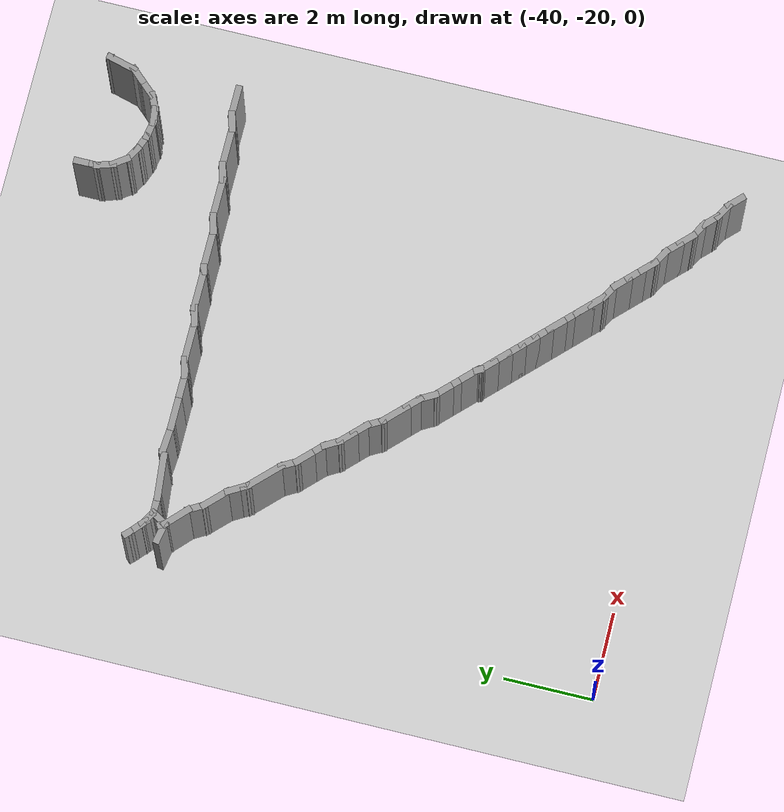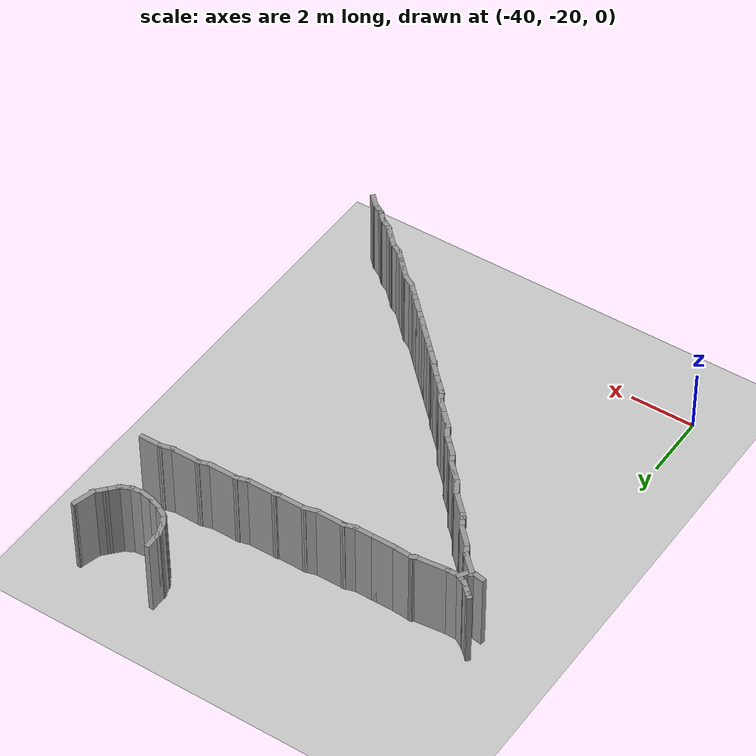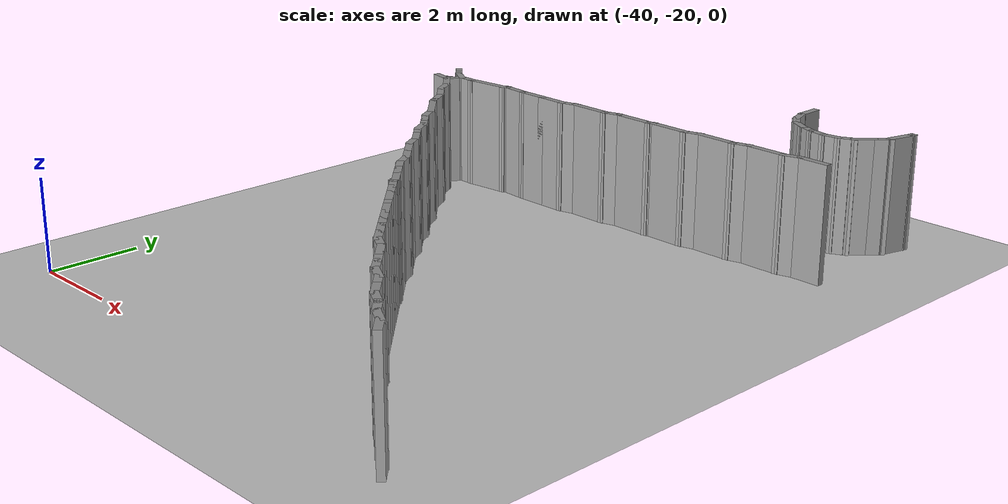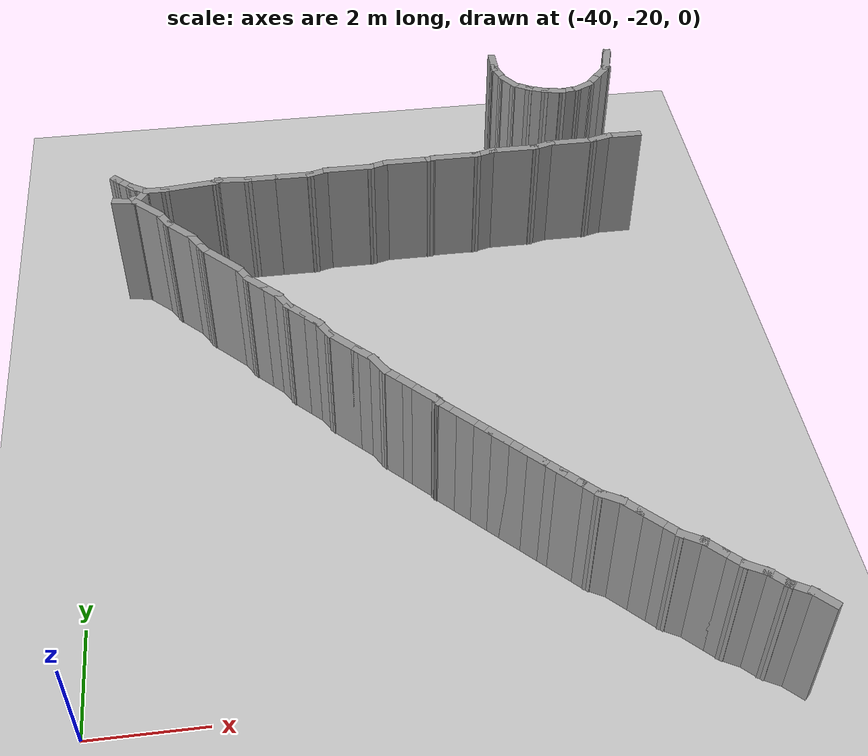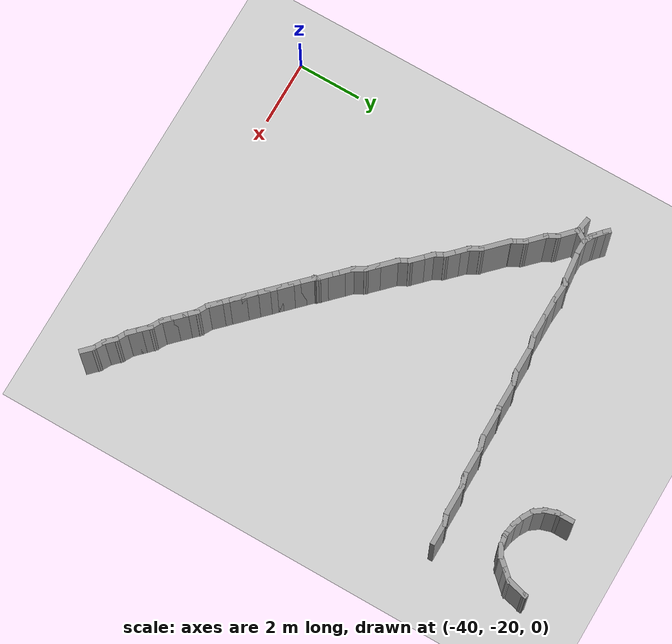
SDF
<sdf version="1.6">
 <world name="default">
  <model name="ground_plane">
   <static>1</static>
   <link name="link">
    <collision name="collision">
     <geometry><plane><normal>0 0 1</normal><size>100 100</size></plane></geometry>
     <surface><friction><ode><mu>100</mu><mu2>50</mu2></ode></friction></surface>
    </collision>
    <visual name="visual">
     <cast_shadows>0</cast_shadows>
     <geometry><plane><normal>0 0 1</normal><size>100 100</size></plane></geometry>
     <material>
      <script><uri>file://media/materials/scripts/gazebo.material</uri><name>Gazebo/Grey</name></script>
     </material>
    </visual>
   </link>
  </model>
  <model name="scene">
   <pose>1.8013 -1.70593 0 0 -0 0</pose>
   <link name="Wall_100">
    <collision name="Wall_100_Collision">
     <geometry><box><size>0.5 0.15 2.5</size></box></geometry>
     <pose>0 0 1.25 0 -0 0</pose>
    </collision>
    <visual name="Wall_100_Visual">
     <pose>0 0 1.25 0 -0 0</pose>
     <geometry><box><size>0.5 0.15 2.5</size></box></geometry>
     <material>
      <script><uri>file://media/materials/scripts/gazebo.material</uri><name>Gazebo/Grey</name></script>
      <ambient>1 1 1 1</ambient>
     </material>
    </visual>
    <pose>-30.6917 -18.8012 0 0 -0 2.35619</pose>
   </link>
   <link name="Wall_101">
    <collision name="Wall_101_Collision">
     <geometry><box><size>0.5 0.15 2.5</size></box></geometry>
     <pose>0 0 1.25 0 -0 0</pose>
    </collision>
    <visual name="Wall_101_Visual">
     <pose>0 0 1.25 0 -0 0</pose>
     <geometry><box><size>0.5 0.15 2.5</size></box></geometry>
     <material>
      <script><uri>file://media/materials/scripts/gazebo.material</uri><name>Gazebo/Grey</name></script>
      <ambient>1 1 1 1</ambient>
     </material>
    </visual>
    <pose>-30.967 -18.5899 0 0 -0 2.61799</pose>
   </link>
   <link name="Wall_103">
    <collision name="Wall_103_Collision">
     <geometry><box><size>0.5 0.15 2.5</size></box></geometry>
     <pose>0 0 1.25 0 -0 0</pose>
    </collision>
    <visual name="Wall_103_Visual">
     <pose>0 0 1.25 0 -0 0</pose>
     <geometry><box><size>0.5 0.15 2.5</size></box></geometry>
     <material>
      <script><uri>file://media/materials/scripts/gazebo.material</uri><name>Gazebo/Grey</name></script>
      <ambient>1 1 1 1</ambient>
     </material>
    </visual>
    <pose>-31.2423 -18.3787 0 0 -0 2.35619</pose>
   </link>
   <link name="Wall_104">
    <collision name="Wall_104_Collision">
     <geometry><box><size>0.5 0.15 2.5</size></box></geometry>
     <pose>0 0 1.25 0 -0 0</pose>
    </collision>
    <visual name="Wall_104_Visual">
     <pose>0 0 1.25 0 -0 0</pose>
     <geometry><box><size>0.5 0.15 2.5</size></box></geometry>
     <material>
      <script><uri>file://media/materials/scripts/gazebo.material</uri><name>Gazebo/Grey</name></script>
      <ambient>1 1 1 1</ambient>
     </material>
    </visual>
    <pose>-31.5176 -18.1674 0 0 -0 2.61799</pose>
   </link>
   <link name="Wall_105">
    <collision name="Wall_105_Collision">
     <geometry><box><size>0.5 0.15 2.5</size></box></geometry>
     <pose>0 0 1.25 0 -0 0</pose>
    </collision>
    <visual name="Wall_105_Visual">
     <pose>0 0 1.25 0 -0 0</pose>
     <geometry><box><size>0.5 0.15 2.5</size></box></geometry>
     <material>
      <script><uri>file://media/materials/scripts/gazebo.material</uri><name>Gazebo/Grey</name></script>
      <ambient>1 1 1 1</ambient>
     </material>
    </visual>
    <pose>-31.7929 -17.9562 0 0 -0 2.35619</pose>
   </link>
   <link name="Wall_106">
    <collision name="Wall_106_Collision">
     <geometry><box><size>0.5 0.15 2.5</size></box></geometry>
     <pose>0 0 1.25 0 -0 0</pose>
    </collision>
    <visual name="Wall_106_Visual">
     <pose>0 0 1.25 0 -0 0</pose>
     <geometry><box><size>0.5 0.15 2.5</size></box></geometry>
     <material>
      <script><uri>file://media/materials/scripts/gazebo.material</uri><name>Gazebo/Grey</name></script>
      <ambient>1 1 1 1</ambient>
     </material>
    </visual>
    <pose>-32.0404 -17.7087 0 0 -0 2.35619</pose>
   </link>
   <link name="Wall_107">
    <collision name="Wall_107_Collision">
     <geometry><box><size>0.5 0.15 2.5</size></box></geometry>
     <pose>0 0 1.25 0 -0 0</pose>
    </collision>
    <visual name="Wall_107_Visual">
     <pose>0 0 1.25 0 -0 0</pose>
     <geometry><box><size>0.5 0.15 2.5</size></box></geometry>
     <material>
      <script><uri>file://media/materials/scripts/gazebo.material</uri><name>Gazebo/Grey</name></script>
      <ambient>1 1 1 1</ambient>
     </material>
    </visual>
    <pose>-32.3157 -17.4975 0 0 -0 2.61799</pose>
   </link>
   <link name="Wall_108">
    <collision name="Wall_108_Collision">
     <geometry><box><size>0.5 0.15 2.5</size></box></geometry>
     <pose>0 0 1.25 0 -0 0</pose>
    </collision>
    <visual name="Wall_108_Visual">
     <pose>0 0 1.25 0 -0 0</pose>
     <geometry><box><size>0.5 0.15 2.5</size></box></geometry>
     <material>
      <script><uri>file://media/materials/scripts/gazebo.material</uri><name>Gazebo/Grey</name></script>
      <ambient>1 1 1 1</ambient>
     </material>
    </visual>
    <pose>-32.591 -17.2862 0 0 -0 2.35619</pose>
   </link>
   <link name="Wall_109">
    <collision name="Wall_109_Collision">
     <geometry><box><size>0.5 0.15 2.5</size></box></geometry>
     <pose>0 0 1.25 0 -0 0</pose>
    </collision>
    <visual name="Wall_109_Visual">
     <pose>0 0 1.25 0 -0 0</pose>
     <geometry><box><size>0.5 0.15 2.5</size></box></geometry>
     <material>
      <script><uri>file://media/materials/scripts/gazebo.material</uri><name>Gazebo/Grey</name></script>
      <ambient>1 1 1 1</ambient>
     </material>
    </visual>
    <pose>-32.8385 -17.0387 0 0 -0 2.35619</pose>
   </link>
   <link name="Wall_110">
    <collision name="Wall_110_Collision">
     <geometry><box><size>0.5 0.15 2.5</size></box></geometry>
     <pose>0 0 1.25 0 -0 0</pose>
    </collision>
    <visual name="Wall_110_Visual">
     <pose>0 0 1.25 0 -0 0</pose>
     <geometry><box><size>0.5 0.15 2.5</size></box></geometry>
     <material>
      <script><uri>file://media/materials/scripts/gazebo.material</uri><name>Gazebo/Grey</name></script>
      <ambient>1 1 1 1</ambient>
     </material>
    </visual>
    <pose>-33.086 -16.7913 0 0 -0 2.35619</pose>
   </link>
   <link name="Wall_111">
    <collision name="Wall_111_Collision">
     <geometry><box><size>0.5 0.15 2.5</size></box></geometry>
     <pose>0 0 1.25 0 -0 0</pose>
    </collision>
    <visual name="Wall_111_Visual">
     <pose>0 0 1.25 0 -0 0</pose>
     <geometry><box><size>0.5 0.15 2.5</size></box></geometry>
     <material>
      <script><uri>file://media/materials/scripts/gazebo.material</uri><name>Gazebo/Grey</name></script>
      <ambient>1 1 1 1</ambient>
     </material>
    </visual>
    <pose>-33.3613 -16.58 0 0 -0 2.61799</pose>
   </link>
   <link name="Wall_112">
    <collision name="Wall_112_Collision">
     <geometry><box><size>0.5 0.15 2.5</size></box></geometry>
     <pose>0 0 1.25 0 -0 0</pose>
    </collision>
    <visual name="Wall_112_Visual">
     <pose>0 0 1.25 0 -0 0</pose>
     <geometry><box><size>0.5 0.15 2.5</size></box></geometry>
     <material>
      <script><uri>file://media/materials/scripts/gazebo.material</uri><name>Gazebo/Grey</name></script>
      <ambient>1 1 1 1</ambient>
     </material>
    </visual>
    <pose>-33.6366 -16.3688 0 0 -0 2.35619</pose>
   </link>
   <link name="Wall_113">
    <collision name="Wall_113_Collision">
     <geometry><box><size>0.5 0.15 2.5</size></box></geometry>
     <pose>0 0 1.25 0 -0 0</pose>
    </collision>
    <visual name="Wall_113_Visual">
     <pose>0 0 1.25 0 -0 0</pose>
     <geometry><box><size>0.5 0.15 2.5</size></box></geometry>
     <material>
      <script><uri>file://media/materials/scripts/gazebo.material</uri><name>Gazebo/Grey</name></script>
      <ambient>1 1 1 1</ambient>
     </material>
    </visual>
    <pose>-33.8841 -16.1213 0 0 -0 2.35619</pose>
   </link>
   <link name="Wall_115">
    <collision name="Wall_115_Collision">
     <geometry><box><size>0.5 0.15 2.5</size></box></geometry>
     <pose>0 0 1.25 0 -0 0</pose>
    </collision>
    <visual name="Wall_115_Visual">
     <pose>0 0 1.25 0 -0 0</pose>
     <geometry><box><size>0.5 0.15 2.5</size></box></geometry>
     <material>
      <script><uri>file://media/materials/scripts/gazebo.material</uri><name>Gazebo/Grey</name></script>
      <ambient>1 1 1 1</ambient>
     </material>
    </visual>
    <pose>-34.1315 -15.8738 0 0 -0 2.35619</pose>
   </link>
   <link name="Wall_116">
    <collision name="Wall_116_Collision">
     <geometry><box><size>0.5 0.15 2.5</size></box></geometry>
     <pose>0 0 1.25 0 -0 0</pose>
    </collision>
    <visual name="Wall_116_Visual">
     <pose>0 0 1.25 0 -0 0</pose>
     <geometry><box><size>0.5 0.15 2.5</size></box></geometry>
     <material>
      <script><uri>file://media/materials/scripts/gazebo.material</uri><name>Gazebo/Grey</name></script>
      <ambient>1 1 1 1</ambient>
     </material>
    </visual>
    <pose>-34.379 -15.6263 0 0 -0 2.35619</pose>
   </link>
   <link name="Wall_117">
    <collision name="Wall_117_Collision">
     <geometry><box><size>0.5 0.15 2.5</size></box></geometry>
     <pose>0 0 1.25 0 -0 0</pose>
    </collision>
    <visual name="Wall_117_Visual">
     <pose>0 0 1.25 0 -0 0</pose>
     <geometry><box><size>0.5 0.15 2.5</size></box></geometry>
     <material>
      <script><uri>file://media/materials/scripts/gazebo.material</uri><name>Gazebo/Grey</name></script>
      <ambient>1 1 1 1</ambient>
     </material>
    </visual>
    <pose>-34.6265 -15.3788 0 0 -0 2.35619</pose>
   </link>
   <link name="Wall_118">
    <collision name="Wall_118_Collision">
     <geometry><box><size>0.5 0.15 2.5</size></box></geometry>
     <pose>0 0 1.25 0 -0 0</pose>
    </collision>
    <visual name="Wall_118_Visual">
     <pose>0 0 1.25 0 -0 0</pose>
     <geometry><box><size>0.5 0.15 2.5</size></box></geometry>
     <material>
      <script><uri>file://media/materials/scripts/gazebo.material</uri><name>Gazebo/Grey</name></script>
      <ambient>1 1 1 1</ambient>
     </material>
    </visual>
    <pose>-34.874 -15.1313 0 0 -0 2.35619</pose>
   </link>
   <link name="Wall_119">
    <collision name="Wall_119_Collision">
     <geometry><box><size>0.5 0.15 2.5</size></box></geometry>
     <pose>0 0 1.25 0 -0 0</pose>
    </collision>
    <visual name="Wall_119_Visual">
     <pose>0 0 1.25 0 -0 0</pose>
     <geometry><box><size>0.5 0.15 2.5</size></box></geometry>
     <material>
      <script><uri>file://media/materials/scripts/gazebo.material</uri><name>Gazebo/Grey</name></script>
      <ambient>1 1 1 1</ambient>
     </material>
    </visual>
    <pose>-35.1215 -14.8838 0 0 -0 2.35619</pose>
   </link>
   <link name="Wall_120">
    <collision name="Wall_120_Collision">
     <geometry><box><size>0.5 0.15 2.5</size></box></geometry>
     <pose>0 0 1.25 0 -0 0</pose>
    </collision>
    <visual name="Wall_120_Visual">
     <pose>0 0 1.25 0 -0 0</pose>
     <geometry><box><size>0.5 0.15 2.5</size></box></geometry>
     <material>
      <script><uri>file://media/materials/scripts/gazebo.material</uri><name>Gazebo/Grey</name></script>
      <ambient>1 1 1 1</ambient>
     </material>
    </visual>
    <pose>-35.369 -14.6364 0 0 -0 2.35619</pose>
   </link>
   <link name="Wall_121">
    <collision name="Wall_121_Collision">
     <geometry><box><size>0.5 0.15 2.5</size></box></geometry>
     <pose>0 0 1.25 0 -0 0</pose>
    </collision>
    <visual name="Wall_121_Visual">
     <pose>0 0 1.25 0 -0 0</pose>
     <geometry><box><size>0.5 0.15 2.5</size></box></geometry>
     <material>
      <script><uri>file://media/materials/scripts/gazebo.material</uri><name>Gazebo/Grey</name></script>
      <ambient>1 1 1 1</ambient>
     </material>
    </visual>
    <pose>-35.6165 -14.3889 0 0 -0 2.35619</pose>
   </link>
   <link name="Wall_122">
    <collision name="Wall_122_Collision">
     <geometry><box><size>0.15 0.15 2.5</size></box></geometry>
     <pose>0 0 1.25 0 -0 0</pose>
    </collision>
    <visual name="Wall_122_Visual">
     <pose>0 0 1.25 0 -0 0</pose>
     <geometry><box><size>0.15 0.15 2.5</size></box></geometry>
     <material>
      <script><uri>file://media/materials/scripts/gazebo.material</uri><name>Gazebo/Grey</name></script>
      <ambient>1 1 1 1</ambient>
     </material>
    </visual>
    <pose>-35.7402 -14.2651 0 0 -0 0</pose>
   </link>
   <link name="Wall_123">
    <collision name="Wall_123_Collision">
     <geometry><box><size>0.25 0.15 2.5</size></box></geometry>
     <pose>0 0 1.25 0 -0 0</pose>
    </collision>
    <visual name="Wall_123_Visual">
     <pose>0 0 1.25 0 -0 0</pose>
     <geometry><box><size>0.25 0.15 2.5</size></box></geometry>
     <material>
      <script><uri>file://media/materials/scripts/gazebo.material</uri><name>Gazebo/Grey</name></script>
      <ambient>1 1 1 1</ambient>
     </material>
    </visual>
    <pose>-35.7652 -14.2218 0 0 -0 2.0944</pose>
   </link>
   <link name="Wall_124">
    <collision name="Wall_124_Collision">
     <geometry><box><size>0.5 0.15 2.5</size></box></geometry>
     <pose>0 0 1.25 0 -0 0</pose>
    </collision>
    <visual name="Wall_124_Visual">
     <pose>0 0 1.25 0 -0 0</pose>
     <geometry><box><size>0.5 0.15 2.5</size></box></geometry>
     <material>
      <script><uri>file://media/materials/scripts/gazebo.material</uri><name>Gazebo/Grey</name></script>
      <ambient>1 1 1 1</ambient>
     </material>
    </visual>
    <pose>-35.914 -14.0548 0 0 -0 2.35619</pose>
   </link>
   <link name="Wall_125">
    <collision name="Wall_125_Collision">
     <geometry><box><size>0.5 0.15 2.5</size></box></geometry>
     <pose>0 0 1.25 0 -0 0</pose>
    </collision>
    <visual name="Wall_125_Visual">
     <pose>0 0 1.25 0 -0 0</pose>
     <geometry><box><size>0.5 0.15 2.5</size></box></geometry>
     <material>
      <script><uri>file://media/materials/scripts/gazebo.material</uri><name>Gazebo/Grey</name></script>
      <ambient>1 1 1 1</ambient>
     </material>
    </visual>
    <pose>-36.1614 -13.8073 0 0 -0 2.35619</pose>
   </link>
   <link name="Wall_126">
    <collision name="Wall_126_Collision">
     <geometry><box><size>0.5 0.15 2.5</size></box></geometry>
     <pose>0 0 1.25 0 -0 0</pose>
    </collision>
    <visual name="Wall_126_Visual">
     <pose>0 0 1.25 0 -0 0</pose>
     <geometry><box><size>0.5 0.15 2.5</size></box></geometry>
     <material>
      <script><uri>file://media/materials/scripts/gazebo.material</uri><name>Gazebo/Grey</name></script>
      <ambient>1 1 1 1</ambient>
     </material>
    </visual>
    <pose>-36.4089 -13.5598 0 0 -0 2.35619</pose>
   </link>
   <link name="Wall_128">
    <collision name="Wall_128_Collision">
     <geometry><box><size>0.5 0.15 2.5</size></box></geometry>
     <pose>0 0 1.25 0 -0 0</pose>
    </collision>
    <visual name="Wall_128_Visual">
     <pose>0 0 1.25 0 -0 0</pose>
     <geometry><box><size>0.5 0.15 2.5</size></box></geometry>
     <material>
      <script><uri>file://media/materials/scripts/gazebo.material</uri><name>Gazebo/Grey</name></script>
      <ambient>1 1 1 1</ambient>
     </material>
    </visual>
    <pose>-36.6202 -13.2845 0 0 -0 2.0944</pose>
   </link>
   <link name="Wall_129">
    <collision name="Wall_129_Collision">
     <geometry><box><size>0.5 0.15 2.5</size></box></geometry>
     <pose>0 0 1.25 0 -0 0</pose>
    </collision>
    <visual name="Wall_129_Visual">
     <pose>0 0 1.25 0 -0 0</pose>
     <geometry><box><size>0.5 0.15 2.5</size></box></geometry>
     <material>
      <script><uri>file://media/materials/scripts/gazebo.material</uri><name>Gazebo/Grey</name></script>
      <ambient>1 1 1 1</ambient>
     </material>
    </visual>
    <pose>-36.8314 -13.0092 0 0 -0 2.35619</pose>
   </link>
   <link name="Wall_130">
    <collision name="Wall_130_Collision">
     <geometry><box><size>0.75 0.15 2.5</size></box></geometry>
     <pose>0 0 1.25 0 -0 0</pose>
    </collision>
    <visual name="Wall_130_Visual">
     <pose>0 0 1.25 0 -0 0</pose>
     <geometry><box><size>0.75 0.15 2.5</size></box></geometry>
     <material>
      <script><uri>file://media/materials/scripts/gazebo.material</uri><name>Gazebo/Grey</name></script>
      <ambient>1 1 1 1</ambient>
     </material>
    </visual>
    <pose>-37.1673 -12.6733 0 0 -0 2.35619</pose>
   </link>
   <link name="Wall_131">
    <collision name="Wall_131_Collision">
     <geometry><box><size>0.5 0.15 2.5</size></box></geometry>
     <pose>0 0 1.25 0 -0 0</pose>
    </collision>
    <visual name="Wall_131_Visual">
     <pose>0 0 1.25 0 -0 0</pose>
     <geometry><box><size>0.5 0.15 2.5</size></box></geometry>
     <material>
      <script><uri>file://media/materials/scripts/gazebo.material</uri><name>Gazebo/Grey</name></script>
      <ambient>1 1 1 1</ambient>
     </material>
    </visual>
    <pose>-37.4669 -12.3096 0 0 -0 2.0944</pose>
   </link>
   <link name="Wall_132">
    <collision name="Wall_132_Collision">
     <geometry><box><size>0.5 0.15 2.5</size></box></geometry>
     <pose>0 0 1.25 0 -0 0</pose>
    </collision>
    <visual name="Wall_132_Visual">
     <pose>0 0 1.25 0 -0 0</pose>
     <geometry><box><size>0.5 0.15 2.5</size></box></geometry>
     <material>
      <script><uri>file://media/materials/scripts/gazebo.material</uri><name>Gazebo/Grey</name></script>
      <ambient>1 1 1 1</ambient>
     </material>
    </visual>
    <pose>-37.6782 -12.0343 0 0 -0 2.35619</pose>
   </link>
   <link name="Wall_133">
    <collision name="Wall_133_Collision">
     <geometry><box><size>0.5 0.15 2.5</size></box></geometry>
     <pose>0 0 1.25 0 -0 0</pose>
    </collision>
    <visual name="Wall_133_Visual">
     <pose>0 0 1.25 0 -0 0</pose>
     <geometry><box><size>0.5 0.15 2.5</size></box></geometry>
     <material>
      <script><uri>file://media/materials/scripts/gazebo.material</uri><name>Gazebo/Grey</name></script>
      <ambient>1 1 1 1</ambient>
     </material>
    </visual>
    <pose>-37.9257 -11.7869 0 0 -0 2.35619</pose>
   </link>
   <link name="Wall_134">
    <collision name="Wall_134_Collision">
     <geometry><box><size>0.5 0.15 2.5</size></box></geometry>
     <pose>0 0 1.25 0 -0 0</pose>
    </collision>
    <visual name="Wall_134_Visual">
     <pose>0 0 1.25 0 -0 0</pose>
     <geometry><box><size>0.5 0.15 2.5</size></box></geometry>
     <material>
      <script><uri>file://media/materials/scripts/gazebo.material</uri><name>Gazebo/Grey</name></script>
      <ambient>1 1 1 1</ambient>
     </material>
    </visual>
    <pose>-38.1369 -11.5116 0 0 -0 2.0944</pose>
   </link>
   <link name="Wall_135">
    <collision name="Wall_135_Collision">
     <geometry><box><size>0.5 0.15 2.5</size></box></geometry>
     <pose>0 0 1.25 0 -0 0</pose>
    </collision>
    <visual name="Wall_135_Visual">
     <pose>0 0 1.25 0 -0 0</pose>
     <geometry><box><size>0.5 0.15 2.5</size></box></geometry>
     <material>
      <script><uri>file://media/materials/scripts/gazebo.material</uri><name>Gazebo/Grey</name></script>
      <ambient>1 1 1 1</ambient>
     </material>
    </visual>
    <pose>-38.3481 -11.2363 0 0 -0 2.35619</pose>
   </link>
   <link name="Wall_136">
    <collision name="Wall_136_Collision">
     <geometry><box><size>0.5 0.15 2.5</size></box></geometry>
     <pose>0 0 1.25 0 -0 0</pose>
    </collision>
    <visual name="Wall_136_Visual">
     <pose>0 0 1.25 0 -0 0</pose>
     <geometry><box><size>0.5 0.15 2.5</size></box></geometry>
     <material>
      <script><uri>file://media/materials/scripts/gazebo.material</uri><name>Gazebo/Grey</name></script>
      <ambient>1 1 1 1</ambient>
     </material>
    </visual>
    <pose>-38.5956 -10.9888 0 0 -0 2.35619</pose>
   </link>
   <link name="Wall_138">
    <collision name="Wall_138_Collision">
     <geometry><box><size>0.5 0.15 2.5</size></box></geometry>
     <pose>0 0 1.25 0 -0 0</pose>
    </collision>
    <visual name="Wall_138_Visual">
     <pose>0 0 1.25 0 -0 0</pose>
     <geometry><box><size>0.5 0.15 2.5</size></box></geometry>
     <material>
      <script><uri>file://media/materials/scripts/gazebo.material</uri><name>Gazebo/Grey</name></script>
      <ambient>1 1 1 1</ambient>
     </material>
    </visual>
    <pose>-38.8069 -10.7135 0 0 -0 2.0944</pose>
   </link>
   <link name="Wall_139">
    <collision name="Wall_139_Collision">
     <geometry><box><size>1 0.15 2.5</size></box></geometry>
     <pose>0 0 1.25 0 -0 0</pose>
    </collision>
    <visual name="Wall_139_Visual">
     <pose>0 0 1.25 0 -0 0</pose>
     <geometry><box><size>1 0.15 2.5</size></box></geometry>
     <material>
      <script><uri>file://media/materials/scripts/gazebo.material</uri><name>Gazebo/Grey</name></script>
      <ambient>1 1 1 1</ambient>
     </material>
    </visual>
    <pose>-39.1949 -10.2614 0 0 -0 2.35619</pose>
   </link>
   <link name="Wall_140">
    <collision name="Wall_140_Collision">
     <geometry><box><size>0.25 0.15 2.5</size></box></geometry>
     <pose>0 0 1.25 0 -0 0</pose>
    </collision>
    <visual name="Wall_140_Visual">
     <pose>0 0 1.25 0 -0 0</pose>
     <geometry><box><size>0.25 0.15 2.5</size></box></geometry>
     <material>
      <script><uri>file://media/materials/scripts/gazebo.material</uri><name>Gazebo/Grey</name></script>
      <ambient>1 1 1 1</ambient>
     </material>
    </visual>
    <pose>-39.5204 -9.91758 0 0 -0 2.0944</pose>
   </link>
   <link name="Wall_141">
    <collision name="Wall_141_Collision">
     <geometry><box><size>0.5 0.15 2.5</size></box></geometry>
     <pose>0 0 1.25 0 -0 0</pose>
    </collision>
    <visual name="Wall_141_Visual">
     <pose>0 0 1.25 0 -0 0</pose>
     <geometry><box><size>0.5 0.15 2.5</size></box></geometry>
     <material>
      <script><uri>file://media/materials/scripts/gazebo.material</uri><name>Gazebo/Grey</name></script>
      <ambient>1 1 1 1</ambient>
     </material>
    </visual>
    <pose>-39.6329 -9.72272 0 0 -0 2.0944</pose>
   </link>
   <link name="Wall_142">
    <collision name="Wall_142_Collision">
     <geometry><box><size>0.75 0.15 2.5</size></box></geometry>
     <pose>0 0 1.25 0 -0 0</pose>
    </collision>
    <visual name="Wall_142_Visual">
     <pose>0 0 1.25 0 -0 0</pose>
     <geometry><box><size>0.75 0.15 2.5</size></box></geometry>
     <material>
      <script><uri>file://media/materials/scripts/gazebo.material</uri><name>Gazebo/Grey</name></script>
      <ambient>1 1 1 1</ambient>
     </material>
    </visual>
    <pose>-39.9325 -9.35904 0 0 -0 2.35619</pose>
   </link>
   <link name="Wall_143">
    <collision name="Wall_143_Collision">
     <geometry><box><size>0.5 0.15 2.5</size></box></geometry>
     <pose>0 0 1.25 0 -0 0</pose>
    </collision>
    <visual name="Wall_143_Visual">
     <pose>0 0 1.25 0 -0 0</pose>
     <geometry><box><size>0.5 0.15 2.5</size></box></geometry>
     <material>
      <script><uri>file://media/materials/scripts/gazebo.material</uri><name>Gazebo/Grey</name></script>
      <ambient>1 1 1 1</ambient>
     </material>
    </visual>
    <pose>-40.2322 -8.99535 0 0 -0 2.0944</pose>
   </link>
   <link name="Wall_144">
    <collision name="Wall_144_Collision">
     <geometry><box><size>0.75 0.15 2.5</size></box></geometry>
     <pose>0 0 1.25 0 -0 0</pose>
    </collision>
    <visual name="Wall_144_Visual">
     <pose>0 0 1.25 0 -0 0</pose>
     <geometry><box><size>0.75 0.15 2.5</size></box></geometry>
     <material>
      <script><uri>file://media/materials/scripts/gazebo.material</uri><name>Gazebo/Grey</name></script>
      <ambient>1 1 1 1</ambient>
     </material>
    </visual>
    <pose>-40.5369 -8.63673 0 0 -0 2.38006</pose>
   </link>
   <link name="Wall_146">
    <collision name="Wall_146_Collision">
     <geometry><box><size>0.505936 0.15 2.5</size></box></geometry>
     <pose>0 0 1.25 0 -0 0</pose>
    </collision>
    <visual name="Wall_146_Visual">
     <pose>0 0 1.25 0 -0 0</pose>
     <geometry><box><size>0.505936 0.15 2.5</size></box></geometry>
     <material>
      <script><uri>file://media/materials/scripts/gazebo.material</uri><name>Gazebo/Grey</name></script>
      <ambient>1 1 1 1</ambient>
     </material>
    </visual>
    <pose>-40.6615 -8.27769 0 0 -0 1.02346</pose>
   </link>
   <link name="Wall_147">
    <collision name="Wall_147_Collision">
     <geometry><box><size>0.5 0.15 2.5</size></box></geometry>
     <pose>0 0 1.25 0 -0 0</pose>
    </collision>
    <visual name="Wall_147_Visual">
     <pose>0 0 1.25 0 -0 0</pose>
     <geometry><box><size>0.5 0.15 2.5</size></box></geometry>
     <material>
      <script><uri>file://media/materials/scripts/gazebo.material</uri><name>Gazebo/Grey</name></script>
      <ambient>1 1 1 1</ambient>
     </material>
    </visual>
    <pose>-40.388 -8.12572 0 0 -0 0</pose>
   </link>
   <link name="Wall_148">
    <collision name="Wall_148_Collision">
     <geometry><box><size>1.1024 0.15 2.5</size></box></geometry>
     <pose>0 0 1.25 0 -0 0</pose>
    </collision>
    <visual name="Wall_148_Visual">
     <pose>0 0 1.25 0 -0 0</pose>
     <geometry><box><size>1.1024 0.15 2.5</size></box></geometry>
     <material>
      <script><uri>file://media/materials/scripts/gazebo.material</uri><name>Gazebo/Grey</name></script>
      <ambient>1 1 1 1</ambient>
     </material>
    </visual>
    <pose>-39.7452 -8.07597 0 0 -0 0.104665</pose>
   </link>
   <link name="Wall_149">
    <collision name="Wall_149_Collision">
     <geometry><box><size>0.25 0.15 2.5</size></box></geometry>
     <pose>0 0 1.25 0 -0 0</pose>
    </collision>
    <visual name="Wall_149_Visual">
     <pose>0 0 1.25 0 -0 0</pose>
     <geometry><box><size>0.25 0.15 2.5</size></box></geometry>
     <material>
      <script><uri>file://media/materials/scripts/gazebo.material</uri><name>Gazebo/Grey</name></script>
      <ambient>1 1 1 1</ambient>
     </material>
    </visual>
    <pose>-39.2284 -8.00122 0 0 -0 0.523599</pose>
   </link>
   <link name="Wall_150">
    <collision name="Wall_150_Collision">
     <geometry><box><size>0.722484 0.15 2.5</size></box></geometry>
     <pose>0 0 1.25 0 -0 0</pose>
    </collision>
    <visual name="Wall_150_Visual">
     <pose>0 0 1.25 0 -0 0</pose>
     <geometry><box><size>0.722484 0.15 2.5</size></box></geometry>
     <material>
      <script><uri>file://media/materials/scripts/gazebo.material</uri><name>Gazebo/Grey</name></script>
      <ambient>1 1 1 1</ambient>
     </material>
    </visual>
    <pose>-38.9024 -7.99649 0 0 0 -0.070863</pose>
   </link>
   <link name="Wall_151">
    <collision name="Wall_151_Collision">
     <geometry><box><size>0.75 0.15 2.5</size></box></geometry>
     <pose>0 0 1.25 0 -0 0</pose>
    </collision>
    <visual name="Wall_151_Visual">
     <pose>0 0 1.25 0 -0 0</pose>
     <geometry><box><size>0.75 0.15 2.5</size></box></geometry>
     <material>
      <script><uri>file://media/materials/scripts/gazebo.material</uri><name>Gazebo/Grey</name></script>
      <ambient>1 1 1 1</ambient>
     </material>
    </visual>
    <pose>-38.3169 -8.01675 0 0 -0 0</pose>
   </link>
   <link name="Wall_152">
    <collision name="Wall_152_Collision">
     <geometry><box><size>0.75 0.15 2.5</size></box></geometry>
     <pose>0 0 1.25 0 -0 0</pose>
    </collision>
    <visual name="Wall_152_Visual">
     <pose>0 0 1.25 0 -0 0</pose>
     <geometry><box><size>0.75 0.15 2.5</size></box></geometry>
     <material>
      <script><uri>file://media/materials/scripts/gazebo.material</uri><name>Gazebo/Grey</name></script>
      <ambient>1 1 1 1</ambient>
     </material>
    </visual>
    <pose>-37.7169 -8.01675 0 0 -0 0</pose>
   </link>
   <link name="Wall_153">
    <collision name="Wall_153_Collision">
     <geometry><box><size>0.5 0.15 2.5</size></box></geometry>
     <pose>0 0 1.25 0 -0 0</pose>
    </collision>
    <visual name="Wall_153_Visual">
     <pose>0 0 1.25 0 -0 0</pose>
     <geometry><box><size>0.5 0.15 2.5</size></box></geometry>
     <material>
      <script><uri>file://media/materials/scripts/gazebo.material</uri><name>Gazebo/Grey</name></script>
      <ambient>1 1 1 1</ambient>
     </material>
    </visual>
    <pose>-37.2479 -7.97146 0 0 -0 0.261799</pose>
   </link>
   <link name="Wall_154">
    <collision name="Wall_154_Collision">
     <geometry><box><size>1 0.15 2.5</size></box></geometry>
     <pose>0 0 1.25 0 -0 0</pose>
    </collision>
    <visual name="Wall_154_Visual">
     <pose>0 0 1.25 0 -0 0</pose>
     <geometry><box><size>1 0.15 2.5</size></box></geometry>
     <material>
      <script><uri>file://media/materials/scripts/gazebo.material</uri><name>Gazebo/Grey</name></script>
      <ambient>1 1 1 1</ambient>
     </material>
    </visual>
    <pose>-36.6538 -7.92617 0 0 -0 0</pose>
   </link>
   <link name="Wall_155">
    <collision name="Wall_155_Collision">
     <geometry><box><size>0.5 0.15 2.5</size></box></geometry>
     <pose>0 0 1.25 0 -0 0</pose>
    </collision>
    <visual name="Wall_155_Visual">
     <pose>0 0 1.25 0 -0 0</pose>
     <geometry><box><size>0.5 0.15 2.5</size></box></geometry>
     <material>
      <script><uri>file://media/materials/scripts/gazebo.material</uri><name>Gazebo/Grey</name></script>
      <ambient>1 1 1 1</ambient>
     </material>
    </visual>
    <pose>-36.0598 -7.88087 0 0 -0 0.261799</pose>
   </link>
   <link name="Wall_156">
    <collision name="Wall_156_Collision">
     <geometry><box><size>1 0.15 2.5</size></box></geometry>
     <pose>0 0 1.25 0 -0 0</pose>
    </collision>
    <visual name="Wall_156_Visual">
     <pose>0 0 1.25 0 -0 0</pose>
     <geometry><box><size>1 0.15 2.5</size></box></geometry>
     <material>
      <script><uri>file://media/materials/scripts/gazebo.material</uri><name>Gazebo/Grey</name></script>
      <ambient>1 1 1 1</ambient>
     </material>
    </visual>
    <pose>-35.4658 -7.83558 0 0 -0 0</pose>
   </link>
   <link name="Wall_157">
    <collision name="Wall_157_Collision">
     <geometry><box><size>0.25 0.15 2.5</size></box></geometry>
     <pose>0 0 1.25 0 -0 0</pose>
    </collision>
    <visual name="Wall_157_Visual">
     <pose>0 0 1.25 0 -0 0</pose>
     <geometry><box><size>0.25 0.15 2.5</size></box></geometry>
     <material>
      <script><uri>file://media/materials/scripts/gazebo.material</uri><name>Gazebo/Grey</name></script>
      <ambient>1 1 1 1</ambient>
     </material>
    </visual>
    <pose>-34.9925 -7.82264 0 0 -0 0.261799</pose>
   </link>
   <link name="Wall_158">
    <collision name="Wall_158_Collision">
     <geometry><box><size>1 0.15 2.5</size></box></geometry>
     <pose>0 0 1.25 0 -0 0</pose>
    </collision>
    <visual name="Wall_158_Visual">
     <pose>0 0 1.25 0 -0 0</pose>
     <geometry><box><size>1 0.15 2.5</size></box></geometry>
     <material>
      <script><uri>file://media/materials/scripts/gazebo.material</uri><name>Gazebo/Grey</name></script>
      <ambient>1 1 1 1</ambient>
     </material>
    </visual>
    <pose>-34.5192 -7.8097 0 0 -0 0</pose>
   </link>
   <link name="Wall_159">
    <collision name="Wall_159_Collision">
     <geometry><box><size>0.5 0.15 2.5</size></box></geometry>
     <pose>0 0 1.25 0 -0 0</pose>
    </collision>
    <visual name="Wall_159_Visual">
     <pose>0 0 1.25 0 -0 0</pose>
     <geometry><box><size>0.5 0.15 2.5</size></box></geometry>
     <material>
      <script><uri>file://media/materials/scripts/gazebo.material</uri><name>Gazebo/Grey</name></script>
      <ambient>1 1 1 1</ambient>
     </material>
    </visual>
    <pose>-33.9251 -7.76441 0 0 -0 0.261799</pose>
   </link>
   <link name="Wall_160">
    <collision name="Wall_160_Collision">
     <geometry><box><size>1 0.15 2.5</size></box></geometry>
     <pose>0 0 1.25 0 -0 0</pose>
    </collision>
    <visual name="Wall_160_Visual">
     <pose>0 0 1.25 0 -0 0</pose>
     <geometry><box><size>1 0.15 2.5</size></box></geometry>
     <material>
      <script><uri>file://media/materials/scripts/gazebo.material</uri><name>Gazebo/Grey</name></script>
      <ambient>1 1 1 1</ambient>
     </material>
    </visual>
    <pose>-33.3311 -7.71911 0 0 -0 0</pose>
   </link>
   <link name="Wall_161">
    <collision name="Wall_161_Collision">
     <geometry><box><size>0.5 0.15 2.5</size></box></geometry>
     <pose>0 0 1.25 0 -0 0</pose>
    </collision>
    <visual name="Wall_161_Visual">
     <pose>0 0 1.25 0 -0 0</pose>
     <geometry><box><size>0.5 0.15 2.5</size></box></geometry>
     <material>
      <script><uri>file://media/materials/scripts/gazebo.material</uri><name>Gazebo/Grey</name></script>
      <ambient>1 1 1 1</ambient>
     </material>
    </visual>
    <pose>-32.7371 -7.67382 0 0 -0 0.261799</pose>
   </link>
   <link name="Wall_163">
    <collision name="Wall_163_Collision">
     <geometry><box><size>1 0.15 2.5</size></box></geometry>
     <pose>0 0 1.25 0 -0 0</pose>
    </collision>
    <visual name="Wall_163_Visual">
     <pose>0 0 1.25 0 -0 0</pose>
     <geometry><box><size>1 0.15 2.5</size></box></geometry>
     <material>
      <script><uri>file://media/materials/scripts/gazebo.material</uri><name>Gazebo/Grey</name></script>
      <ambient>1 1 1 1</ambient>
     </material>
    </visual>
    <pose>-32.143 -7.62852 0 0 -0 0</pose>
   </link>
   <link name="Wall_164">
    <collision name="Wall_164_Collision">
     <geometry><box><size>0.5 0.15 2.5</size></box></geometry>
     <pose>0 0 1.25 0 -0 0</pose>
    </collision>
    <visual name="Wall_164_Visual">
     <pose>0 0 1.25 0 -0 0</pose>
     <geometry><box><size>0.5 0.15 2.5</size></box></geometry>
     <material>
      <script><uri>file://media/materials/scripts/gazebo.material</uri><name>Gazebo/Grey</name></script>
      <ambient>1 1 1 1</ambient>
     </material>
    </visual>
    <pose>-31.549 -7.58323 0 0 -0 0.261799</pose>
   </link>
   <link name="Wall_165">
    <collision name="Wall_165_Collision">
     <geometry><box><size>0.75 0.15 2.5</size></box></geometry>
     <pose>0 0 1.25 0 -0 0</pose>
    </collision>
    <visual name="Wall_165_Visual">
     <pose>0 0 1.25 0 -0 0</pose>
     <geometry><box><size>0.75 0.15 2.5</size></box></geometry>
     <material>
      <script><uri>file://media/materials/scripts/gazebo.material</uri><name>Gazebo/Grey</name></script>
      <ambient>1 1 1 1</ambient>
     </material>
    </visual>
    <pose>-31.0799 -7.53794 0 0 -0 0</pose>
   </link>
   <link name="Wall_183">
    <collision name="Wall_183_Collision">
     <geometry><box><size>0.25 0.15 2.5</size></box></geometry>
     <pose>0 0 1.25 0 -0 0</pose>
    </collision>
    <visual name="Wall_183_Visual">
     <pose>0 0 1.25 0 -0 0</pose>
     <geometry><box><size>0.25 0.15 2.5</size></box></geometry>
     <material>
      <script><uri>file://media/materials/scripts/gazebo.material</uri><name>Gazebo/Grey</name></script>
      <ambient>1 1 1 1</ambient>
     </material>
    </visual>
    <pose>-40.774 -8.38129 0 0 -0 2.0944</pose>
   </link>
   <link name="Wall_306">
    <collision name="Wall_306_Collision">
     <geometry><box><size>0.25 0.15 2.5</size></box></geometry>
     <pose>0 0 1.25 0 -0 0</pose>
    </collision>
    <visual name="Wall_306_Visual">
     <pose>0 0 1.25 0 -0 0</pose>
     <geometry><box><size>0.25 0.15 2.5</size></box></geometry>
     <material>
      <script><uri>file://media/materials/scripts/gazebo.material</uri><name>Gazebo/Grey</name></script>
      <ambient>1 1 1 1</ambient>
     </material>
    </visual>
    <pose>-41.1391 -7.69736 0 0 0 -0.785398</pose>
   </link>
   <link name="Wall_307">
    <collision name="Wall_307_Collision">
     <geometry><box><size>0.475612 0.15 2.5</size></box></geometry>
     <pose>0 0 1.25 0 -0 0</pose>
    </collision>
    <visual name="Wall_307_Visual">
     <pose>0 0 1.25 0 -0 0</pose>
     <geometry><box><size>0.475612 0.15 2.5</size></box></geometry>
     <material>
      <script><uri>file://media/materials/scripts/gazebo.material</uri><name>Gazebo/Grey</name></script>
      <ambient>1 1 1 1</ambient>
     </material>
    </visual>
    <pose>-40.9829 -7.8419 0 0 0 -0.735077</pose>
   </link>
   <link name="Wall_308">
    <collision name="Wall_308_Collision">
     <geometry><box><size>0.25 0.15 2.5</size></box></geometry>
     <pose>0 0 1.25 0 -0 0</pose>
    </collision>
    <visual name="Wall_308_Visual">
     <pose>0 0 1.25 0 -0 0</pose>
     <geometry><box><size>0.25 0.15 2.5</size></box></geometry>
     <material>
      <script><uri>file://media/materials/scripts/gazebo.material</uri><name>Gazebo/Grey</name></script>
      <ambient>1 1 1 1</ambient>
     </material>
    </visual>
    <pose>-40.8239 -7.98644 0 0 0 -0.785398</pose>
   </link>
   <link name="Wall_310">
    <collision name="Wall_310_Collision">
     <geometry><box><size>0.493876 0.15 2.5</size></box></geometry>
     <pose>0 0 1.25 0 -0 0</pose>
    </collision>
    <visual name="Wall_310_Visual">
     <pose>0 0 1.25 0 -0 0</pose>
     <geometry><box><size>0.493876 0.15 2.5</size></box></geometry>
     <material>
      <script><uri>file://media/materials/scripts/gazebo.material</uri><name>Gazebo/Grey</name></script>
      <ambient>1 1 1 1</ambient>
     </material>
    </visual>
    <pose>-40.7112 -8.0384 0 0 0 -0.532686</pose>
   </link>
   <link name="Wall_325">
    <collision name="Wall_325_Collision">
     <geometry><box><size>0.551085 0.15 2.5</size></box></geometry>
     <pose>0 0 1.25 0 -0 0</pose>
    </collision>
    <visual name="Wall_325_Visual">
     <pose>0 0 1.25 0 -0 0</pose>
     <geometry><box><size>0.551085 0.15 2.5</size></box></geometry>
     <material>
      <script><uri>file://media/materials/scripts/gazebo.material</uri><name>Gazebo/Grey</name></script>
      <ambient>1 1 1 1</ambient>
     </material>
    </visual>
    <pose>-40.9463 -8.38857 0 0 0 -0.18062</pose>
   </link>
   <link name="Wall_434">
    <collision name="Wall_434_Collision">
     <geometry><box><size>0.5 0.15 2.5</size></box></geometry>
     <pose>0 0 1.25 0 -0 0</pose>
    </collision>
    <visual name="Wall_434_Visual">
     <pose>0 0 1.25 0 -0 0</pose>
     <geometry><box><size>0.5 0.15 2.5</size></box></geometry>
     <material>
      <script><uri>file://media/materials/scripts/gazebo.material</uri><name>Gazebo/Grey</name></script>
      <ambient>1 1 1 1</ambient>
     </material>
    </visual>
    <pose>-33.2456 -4.65863 0 0 0 -1.5708</pose>
   </link>
   <link name="Wall_435">
    <collision name="Wall_435_Collision">
     <geometry><box><size>0.25 0.15 2.5</size></box></geometry>
     <pose>0 0 1.25 0 -0 0</pose>
    </collision>
    <visual name="Wall_435_Visual">
     <pose>0 0 1.25 0 -0 0</pose>
     <geometry><box><size>0.25 0.15 2.5</size></box></geometry>
     <material>
      <script><uri>file://media/materials/scripts/gazebo.material</uri><name>Gazebo/Grey</name></script>
      <ambient>1 1 1 1</ambient>
     </material>
    </visual>
    <pose>-33.2456 -4.88363 0 0 0 -1.5708</pose>
   </link>
   <link name="Wall_436">
    <collision name="Wall_436_Collision">
     <geometry><box><size>0.516747 0.15 2.5</size></box></geometry>
     <pose>0 0 1.25 0 -0 0</pose>
    </collision>
    <visual name="Wall_436_Visual">
     <pose>0 0 1.25 0 -0 0</pose>
     <geometry><box><size>0.516747 0.15 2.5</size></box></geometry>
     <material>
      <script><uri>file://media/materials/scripts/gazebo.material</uri><name>Gazebo/Grey</name></script>
      <ambient>1 1 1 1</ambient>
     </material>
    </visual>
    <pose>-33.1893 -5.10816 0 0 0 -1.2589</pose>
   </link>
   <link name="Wall_437">
    <collision name="Wall_437_Collision">
     <geometry><box><size>0.488795 0.15 2.5</size></box></geometry>
     <pose>0 0 1.25 0 -0 0</pose>
    </collision>
    <visual name="Wall_437_Visual">
     <pose>0 0 1.25 0 -0 0</pose>
     <geometry><box><size>0.488795 0.15 2.5</size></box></geometry>
     <material>
      <script><uri>file://media/materials/scripts/gazebo.material</uri><name>Gazebo/Grey</name></script>
      <ambient>1 1 1 1</ambient>
     </material>
    </visual>
    <pose>-33.0345 -5.41502 0 0 0 -0.950417</pose>
   </link>
   <link name="Wall_438">
    <collision name="Wall_438_Collision">
     <geometry><box><size>0.480252 0.15 2.5</size></box></geometry>
     <pose>0 0 1.25 0 -0 0</pose>
    </collision>
    <visual name="Wall_438_Visual">
     <pose>0 0 1.25 0 -0 0</pose>
     <geometry><box><size>0.480252 0.15 2.5</size></box></geometry>
     <material>
      <script><uri>file://media/materials/scripts/gazebo.material</uri><name>Gazebo/Grey</name></script>
      <ambient>1 1 1 1</ambient>
     </material>
    </visual>
    <pose>-32.7927 -5.64036 0 0 0 -0.519742</pose>
   </link>
   <link name="Wall_439">
    <collision name="Wall_439_Collision">
     <geometry><box><size>0.487434 0.15 2.5</size></box></geometry>
     <pose>0 0 1.25 0 -0 0</pose>
    </collision>
    <visual name="Wall_439_Visual">
     <pose>0 0 1.25 0 -0 0</pose>
     <geometry><box><size>0.487434 0.15 2.5</size></box></geometry>
     <material>
      <script><uri>file://media/materials/scripts/gazebo.material</uri><name>Gazebo/Grey</name></script>
      <ambient>1 1 1 1</ambient>
     </material>
    </visual>
    <pose>-32.4968 -5.78138 0 0 0 -0.357351</pose>
   </link>
   <link name="Wall_441">
    <collision name="Wall_441_Collision">
     <geometry><box><size>0.503781 0.15 2.5</size></box></geometry>
     <pose>0 0 1.25 0 -0 0</pose>
    </collision>
    <visual name="Wall_441_Visual">
     <pose>0 0 1.25 0 -0 0</pose>
     <geometry><box><size>0.503781 0.15 2.5</size></box></geometry>
     <material>
      <script><uri>file://media/materials/scripts/gazebo.material</uri><name>Gazebo/Grey</name></script>
      <ambient>1 1 1 1</ambient>
     </material>
    </visual>
    <pose>-32.1643 -5.86923 0 0 0 -0.163689</pose>
   </link>
   <link name="Wall_442">
    <collision name="Wall_442_Collision">
     <geometry><box><size>0.474233 0.15 2.5</size></box></geometry>
     <pose>0 0 1.25 0 -0 0</pose>
    </collision>
    <visual name="Wall_442_Visual">
     <pose>0 0 1.25 0 -0 0</pose>
     <geometry><box><size>0.474233 0.15 2.5</size></box></geometry>
     <material>
      <script><uri>file://media/materials/scripts/gazebo.material</uri><name>Gazebo/Grey</name></script>
      <ambient>1 1 1 1</ambient>
     </material>
    </visual>
    <pose>-31.8344 -5.87746 0 0 -0 0.127365</pose>
   </link>
   <link name="Wall_443">
    <collision name="Wall_443_Collision">
     <geometry><box><size>0.474843 0.15 2.5</size></box></geometry>
     <pose>0 0 1.25 0 -0 0</pose>
    </collision>
    <visual name="Wall_443_Visual">
     <pose>0 0 1.25 0 -0 0</pose>
     <geometry><box><size>0.474843 0.15 2.5</size></box></geometry>
     <material>
      <script><uri>file://media/materials/scripts/gazebo.material</uri><name>Gazebo/Grey</name></script>
      <ambient>1 1 1 1</ambient>
     </material>
    </visual>
    <pose>-31.5221 -5.78583 0 0 -0 0.452633</pose>
   </link>
   <link name="Wall_444">
    <collision name="Wall_444_Collision">
     <geometry><box><size>0.550928 0.15 2.5</size></box></geometry>
     <pose>0 0 1.25 0 -0 0</pose>
    </collision>
    <visual name="Wall_444_Visual">
     <pose>0 0 1.25 0 -0 0</pose>
     <geometry><box><size>0.550928 0.15 2.5</size></box></geometry>
     <material>
      <script><uri>file://media/materials/scripts/gazebo.material</uri><name>Gazebo/Grey</name></script>
      <ambient>1 1 1 1</ambient>
     </material>
    </visual>
    <pose>-31.2468 -5.56636 0 0 -0 0.833822</pose>
   </link>
   <link name="Wall_445">
    <collision name="Wall_445_Collision">
     <geometry><box><size>0.486697 0.15 2.5</size></box></geometry>
     <pose>0 0 1.25 0 -0 0</pose>
    </collision>
    <visual name="Wall_445_Visual">
     <pose>0 0 1.25 0 -0 0</pose>
     <geometry><box><size>0.486697 0.15 2.5</size></box></geometry>
     <material>
      <script><uri>file://media/materials/scripts/gazebo.material</uri><name>Gazebo/Grey</name></script>
      <ambient>1 1 1 1</ambient>
     </material>
    </visual>
    <pose>-30.9979 -5.29417 0 0 -0 0.825734</pose>
   </link>
   <link name="Wall_469">
    <collision name="Wall_469_Collision">
     <geometry><box><size>0.15 0.15 2.5</size></box></geometry>
     <pose>0 0 1.25 0 -0 0</pose>
    </collision>
    <visual name="Wall_469_Visual">
     <pose>0 0 1.25 0 -0 0</pose>
     <geometry><box><size>0.15 0.15 2.5</size></box></geometry>
     <material>
      <script><uri>file://media/materials/scripts/gazebo.material</uri><name>Gazebo/Grey</name></script>
      <ambient>1 1 1 1</ambient>
     </material>
    </visual>
    <pose>-30.7442 -4.5925 0 0 -0 0</pose>
   </link>
   <link name="Wall_472">
    <collision name="Wall_472_Collision">
     <geometry><box><size>0.75 0.15 2.5</size></box></geometry>
     <pose>0 0 1.25 0 -0 0</pose>
    </collision>
    <visual name="Wall_472_Visual">
     <pose>0 0 1.25 0 -0 0</pose>
     <geometry><box><size>0.75 0.15 2.5</size></box></geometry>
     <material>
      <script><uri>file://media/materials/scripts/gazebo.material</uri><name>Gazebo/Grey</name></script>
      <ambient>1 1 1 1</ambient>
     </material>
    </visual>
    <pose>-30.8219 -4.88228 0 0 0 -1.8326</pose>
   </link>
   <static>1</static>
  </model>
 </world>
</sdf>
